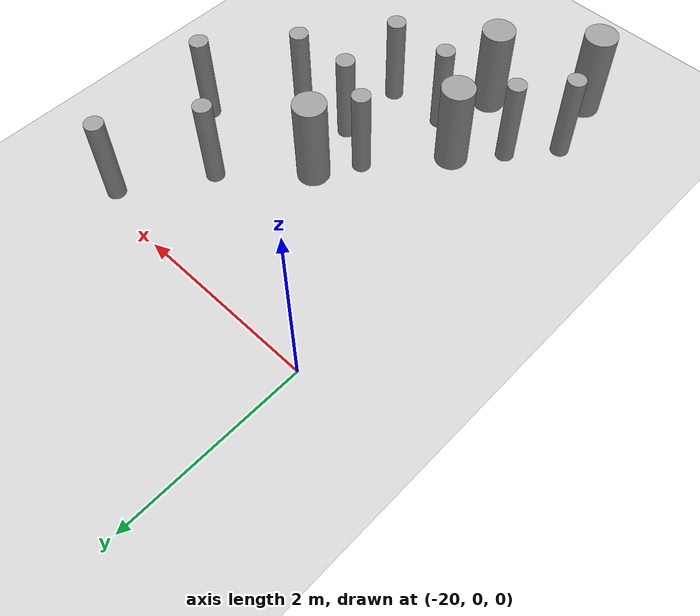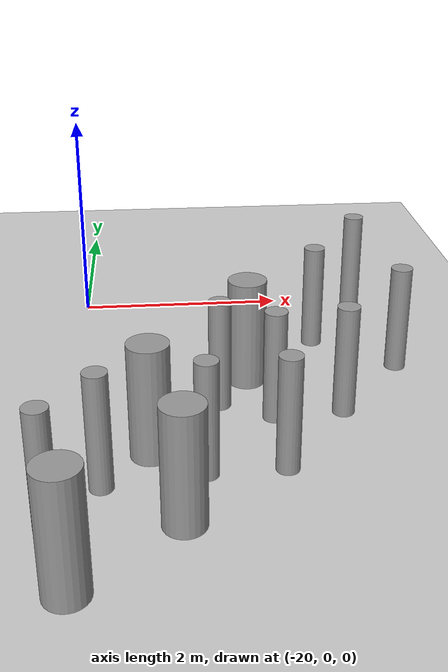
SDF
<sdf version="1.6">
 <world name="default">
  <model name="ground_plane">
   <static>1</static>
   <link name="link">
    <collision name="collision">
     <geometry><plane><normal>0 0 1</normal><size>100 100</size></plane></geometry>
     <surface><friction><ode><mu>100</mu><mu2>50</mu2></ode></friction></surface>
    </collision>
    <visual name="visual">
     <cast_shadows>0</cast_shadows>
     <geometry><plane><normal>0 0 1</normal><size>100 100</size></plane></geometry>
     <material>
      <script><uri>file://media/materials/scripts/gazebo.material</uri><name>Gazebo/Grey</name></script>
     </material>
    </visual>
   </link>
  </model>
  <model name="cyl_wall_clone_clone_1_clone_1_clone_clone_0_clone_1_clone_1">
   <link name="link_0">
    <pose>-2.73893 -0.366465 0 0 -0 0</pose>
    <inertial>
     <mass>0.0374993</mass>
     <inertia>
      <ixx>0.00321281</ixx>
      <ixy>0</ixy>
      <ixz>0</ixz>
      <iyy>0.00321281</iyy>
      <iyz>0</iyz>
      <izz>0.000175774</izz>
     </inertia>
    </inertial>
    <visual name="visual">
     <geometry><cylinder><radius>0.0968661</radius><length>1</length></cylinder></geometry>
     <material>
      <lighting>1</lighting>
      <script><uri>file://media/materials/scripts/gazebo.material</uri><name>Gazebo/Grey</name></script>
      <ambient>0.3 0.3 0.3 1</ambient>
      <diffuse>0.7 0.7 0.7 1</diffuse>
      <specular>0.01 0.01 0.01 1</specular>
      <emissive>0 0 0 1</emissive>
     </material>
    </visual>
    <collision name="collision">
     <geometry><cylinder><radius>0.096866</radius><length>1</length></cylinder></geometry>
     <surface>
      <friction>
       <ode><mu>1</mu><mu2>1</mu2><fdir1>0 0 0</fdir1><slip1>0</slip1><slip2>0</slip2></ode>
       <torsional>
        <coefficient>1</coefficient>
        <patch_radius>0</patch_radius>
        <surface_radius>0</surface_radius>
        <use_patch_radius>1</use_patch_radius>
        <ode><slip>0</slip></ode>
       </torsional>
      </friction>
      <bounce><restitution_coefficient>0</restitution_coefficient><threshold>1e+06</threshold></bounce>
      <contact>
       <collide_without_contact>0</collide_without_contact>
       <collide_without_contact_bitmask>1</collide_without_contact_bitmask>
       <collide_bitmask>1</collide_bitmask>
       <ode>
        <soft_cfm>0</soft_cfm>
        <soft_erp>0.2</soft_erp>
        <kp>1e+13</kp>
        <kd>1</kd>
        <max_vel>0.01</max_vel>
        <min_depth>0</min_depth>
       </ode>
       <bullet>
        <split_impulse>1</split_impulse>
        <split_impulse_penetration_threshold>-0.01</split_impulse_penetration_threshold>
        <soft_cfm>0</soft_cfm>
        <soft_erp>0.2</soft_erp>
        <kp>1e+13</kp>
        <kd>1</kd>
       </bullet>
      </contact>
     </surface>
    </collision>
   </link>
   <link name="link_0_clone">
    <pose>-1.73893 0.61877 0 0 -0 0</pose>
    <inertial>
     <mass>0.0374993</mass>
     <inertia>
      <ixx>0.00321281</ixx>
      <ixy>0</ixy>
      <ixz>0</ixz>
      <iyy>0.00321281</iyy>
      <iyz>0</iyz>
      <izz>0.000175774</izz>
     </inertia>
    </inertial>
    <visual name="visual">
     <geometry><cylinder><radius>0.0968661</radius><length>1</length></cylinder></geometry>
     <material>
      <lighting>1</lighting>
      <script><uri>file://media/materials/scripts/gazebo.material</uri><name>Gazebo/Grey</name></script>
      <ambient>0.3 0.3 0.3 1</ambient>
      <diffuse>0.7 0.7 0.7 1</diffuse>
      <specular>0.01 0.01 0.01 1</specular>
      <emissive>0 0 0 1</emissive>
      <shader type="pixel"/>
     </material>
    </visual>
    <collision name="collision">
     <geometry><cylinder><radius>0.096866</radius><length>1</length></cylinder></geometry>
     <surface>
      <friction>
       <ode><mu>1</mu><mu2>1</mu2><fdir1>0 0 0</fdir1><slip1>0</slip1><slip2>0</slip2></ode>
       <torsional>
        <coefficient>1</coefficient>
        <patch_radius>0</patch_radius>
        <surface_radius>0</surface_radius>
        <use_patch_radius>1</use_patch_radius>
        <ode><slip>0</slip></ode>
       </torsional>
      </friction>
      <bounce><restitution_coefficient>0</restitution_coefficient><threshold>1e+06</threshold></bounce>
      <contact>
       <collide_without_contact>0</collide_without_contact>
       <collide_without_contact_bitmask>1</collide_without_contact_bitmask>
       <collide_bitmask>1</collide_bitmask>
       <ode>
        <soft_cfm>0</soft_cfm>
        <soft_erp>0.2</soft_erp>
        <kp>1e+13</kp>
        <kd>1</kd>
        <max_vel>0.01</max_vel>
        <min_depth>0</min_depth>
       </ode>
       <bullet>
        <split_impulse>1</split_impulse>
        <split_impulse_penetration_threshold>-0.01</split_impulse_penetration_threshold>
        <soft_cfm>0</soft_cfm>
        <soft_erp>0.2</soft_erp>
        <kp>1e+13</kp>
        <kd>1</kd>
       </bullet>
      </contact>
     </surface>
    </collision>
   </link>
   <link name="link_0_clone_clone">
    <pose>-0.327073 0.143919 0 0 -0 0</pose>
    <inertial>
     <mass>0.0374993</mass>
     <inertia>
      <ixx>0.00321281</ixx>
      <ixy>0</ixy>
      <ixz>0</ixz>
      <iyy>0.00321281</iyy>
      <iyz>0</iyz>
      <izz>0.000175774</izz>
     </inertia>
    </inertial>
    <visual name="visual">
     <geometry><cylinder><radius>0.0968661</radius><length>1</length></cylinder></geometry>
     <material>
      <lighting>1</lighting>
      <script><uri>file://media/materials/scripts/gazebo.material</uri><name>Gazebo/Grey</name></script>
      <ambient>0.3 0.3 0.3 1</ambient>
      <diffuse>0.7 0.7 0.7 1</diffuse>
      <specular>0.01 0.01 0.01 1</specular>
      <emissive>0 0 0 1</emissive>
      <shader type="pixel"/>
     </material>
    </visual>
    <collision name="collision">
     <geometry><cylinder><radius>0.096866</radius><length>1</length></cylinder></geometry>
     <surface>
      <friction>
       <ode><mu>1</mu><mu2>1</mu2><fdir1>0 0 0</fdir1><slip1>0</slip1><slip2>0</slip2></ode>
       <torsional>
        <coefficient>1</coefficient>
        <patch_radius>0</patch_radius>
        <surface_radius>0</surface_radius>
        <use_patch_radius>1</use_patch_radius>
        <ode><slip>0</slip></ode>
       </torsional>
      </friction>
      <bounce><restitution_coefficient>0</restitution_coefficient><threshold>1e+06</threshold></bounce>
      <contact>
       <collide_without_contact>0</collide_without_contact>
       <collide_without_contact_bitmask>1</collide_without_contact_bitmask>
       <collide_bitmask>1</collide_bitmask>
       <ode>
        <soft_cfm>0</soft_cfm>
        <soft_erp>0.2</soft_erp>
        <kp>1e+13</kp>
        <kd>1</kd>
        <max_vel>0.01</max_vel>
        <min_depth>0</min_depth>
       </ode>
       <bullet>
        <split_impulse>1</split_impulse>
        <split_impulse_penetration_threshold>-0.01</split_impulse_penetration_threshold>
        <soft_cfm>0</soft_cfm>
        <soft_erp>0.2</soft_erp>
        <kp>1e+13</kp>
        <kd>1</kd>
       </bullet>
      </contact>
     </surface>
    </collision>
   </link>
   <link name="link_0_clone_clone_0">
    <pose>1.26107 -0.419359 0 0 -0 0</pose>
    <inertial>
     <mass>0.0374993</mass>
     <inertia>
      <ixx>0.00321281</ixx>
      <ixy>0</ixy>
      <ixz>0</ixz>
      <iyy>0.00321281</iyy>
      <iyz>0</iyz>
      <izz>0.000175774</izz>
     </inertia>
    </inertial>
    <visual name="visual">
     <geometry><cylinder><radius>0.0968661</radius><length>1</length></cylinder></geometry>
     <material>
      <lighting>1</lighting>
      <script><uri>file://media/materials/scripts/gazebo.material</uri><name>Gazebo/Grey</name></script>
      <ambient>0.3 0.3 0.3 1</ambient>
      <diffuse>0.7 0.7 0.7 1</diffuse>
      <specular>0.01 0.01 0.01 1</specular>
      <emissive>0 0 0 1</emissive>
      <shader type="pixel"/>
     </material>
    </visual>
    <collision name="collision">
     <geometry><cylinder><radius>0.096866</radius><length>1</length></cylinder></geometry>
     <surface>
      <friction>
       <ode><mu>1</mu><mu2>1</mu2><fdir1>0 0 0</fdir1><slip1>0</slip1><slip2>0</slip2></ode>
       <torsional>
        <coefficient>1</coefficient>
        <patch_radius>0</patch_radius>
        <surface_radius>0</surface_radius>
        <use_patch_radius>1</use_patch_radius>
        <ode><slip>0</slip></ode>
       </torsional>
      </friction>
      <bounce><restitution_coefficient>0</restitution_coefficient><threshold>1e+06</threshold></bounce>
      <contact>
       <collide_without_contact>0</collide_without_contact>
       <collide_without_contact_bitmask>1</collide_without_contact_bitmask>
       <collide_bitmask>1</collide_bitmask>
       <ode>
        <soft_cfm>0</soft_cfm>
        <soft_erp>0.2</soft_erp>
        <kp>1e+13</kp>
        <kd>1</kd>
        <max_vel>0.01</max_vel>
        <min_depth>0</min_depth>
       </ode>
       <bullet>
        <split_impulse>1</split_impulse>
        <split_impulse_penetration_threshold>-0.01</split_impulse_penetration_threshold>
        <soft_cfm>0</soft_cfm>
        <soft_erp>0.2</soft_erp>
        <kp>1e+13</kp>
        <kd>1</kd>
       </bullet>
      </contact>
     </surface>
    </collision>
   </link>
   <link name="link_0_clone_clone_1">
    <pose>-1.73893 -0.277168 0 0 -0 0</pose>
    <inertial>
     <mass>0.0374993</mass>
     <inertia>
      <ixx>0.00321281</ixx>
      <ixy>0</ixy>
      <ixz>0</ixz>
      <iyy>0.00321281</iyy>
      <iyz>0</iyz>
      <izz>0.000175774</izz>
     </inertia>
    </inertial>
    <visual name="visual">
     <geometry><cylinder><radius>0.0968661</radius><length>1</length></cylinder></geometry>
     <material>
      <lighting>1</lighting>
      <script><uri>file://media/materials/scripts/gazebo.material</uri><name>Gazebo/Grey</name></script>
      <ambient>0.3 0.3 0.3 1</ambient>
      <diffuse>0.7 0.7 0.7 1</diffuse>
      <specular>0.01 0.01 0.01 1</specular>
      <emissive>0 0 0 1</emissive>
      <shader type="pixel"/>
     </material>
    </visual>
    <collision name="collision">
     <geometry><cylinder><radius>0.096866</radius><length>1</length></cylinder></geometry>
     <surface>
      <friction>
       <ode><mu>1</mu><mu2>1</mu2><fdir1>0 0 0</fdir1><slip1>0</slip1><slip2>0</slip2></ode>
       <torsional>
        <coefficient>1</coefficient>
        <patch_radius>0</patch_radius>
        <surface_radius>0</surface_radius>
        <use_patch_radius>1</use_patch_radius>
        <ode><slip>0</slip></ode>
       </torsional>
      </friction>
      <bounce><restitution_coefficient>0</restitution_coefficient><threshold>1e+06</threshold></bounce>
      <contact>
       <collide_without_contact>0</collide_without_contact>
       <collide_without_contact_bitmask>1</collide_without_contact_bitmask>
       <collide_bitmask>1</collide_bitmask>
       <ode>
        <soft_cfm>0</soft_cfm>
        <soft_erp>0.2</soft_erp>
        <kp>1e+13</kp>
        <kd>1</kd>
        <max_vel>0.01</max_vel>
        <min_depth>0</min_depth>
       </ode>
       <bullet>
        <split_impulse>1</split_impulse>
        <split_impulse_penetration_threshold>-0.01</split_impulse_penetration_threshold>
        <soft_cfm>0</soft_cfm>
        <soft_erp>0.2</soft_erp>
        <kp>1e+13</kp>
        <kd>1</kd>
       </bullet>
      </contact>
     </surface>
    </collision>
   </link>
   <link name="link_0_clone_clone_2">
    <pose>-0.738934 0.593961 0 0 -0 0</pose>
    <inertial>
     <mass>0.0374993</mass>
     <inertia>
      <ixx>0.00321281</ixx>
      <ixy>0</ixy>
      <ixz>0</ixz>
      <iyy>0.00321281</iyy>
      <iyz>0</iyz>
      <izz>0.000175774</izz>
     </inertia>
    </inertial>
    <visual name="visual">
     <geometry><cylinder><radius>0.0968661</radius><length>1</length></cylinder></geometry>
     <material>
      <lighting>1</lighting>
      <script><uri>file://media/materials/scripts/gazebo.material</uri><name>Gazebo/Grey</name></script>
      <ambient>0.3 0.3 0.3 1</ambient>
      <diffuse>0.7 0.7 0.7 1</diffuse>
      <specular>0.01 0.01 0.01 1</specular>
      <emissive>0 0 0 1</emissive>
      <shader type="pixel"/>
     </material>
    </visual>
    <collision name="collision">
     <geometry><cylinder><radius>0.096866</radius><length>1</length></cylinder></geometry>
     <surface>
      <friction>
       <ode><mu>1</mu><mu2>1</mu2><fdir1>0 0 0</fdir1><slip1>0</slip1><slip2>0</slip2></ode>
       <torsional>
        <coefficient>1</coefficient>
        <patch_radius>0</patch_radius>
        <surface_radius>0</surface_radius>
        <use_patch_radius>1</use_patch_radius>
        <ode><slip>0</slip></ode>
       </torsional>
      </friction>
      <bounce><restitution_coefficient>0</restitution_coefficient><threshold>1e+06</threshold></bounce>
      <contact>
       <collide_without_contact>0</collide_without_contact>
       <collide_without_contact_bitmask>1</collide_without_contact_bitmask>
       <collide_bitmask>1</collide_bitmask>
       <ode>
        <soft_cfm>0</soft_cfm>
        <soft_erp>0.2</soft_erp>
        <kp>1e+13</kp>
        <kd>1</kd>
        <max_vel>0.01</max_vel>
        <min_depth>0</min_depth>
       </ode>
       <bullet>
        <split_impulse>1</split_impulse>
        <split_impulse_penetration_threshold>-0.01</split_impulse_penetration_threshold>
        <soft_cfm>0</soft_cfm>
        <soft_erp>0.2</soft_erp>
        <kp>1e+13</kp>
        <kd>1</kd>
       </bullet>
      </contact>
     </surface>
    </collision>
   </link>
   <link name="link_0_clone_clone_3">
    <pose>0.261066 0.624849 0 0 -0 0</pose>
    <inertial>
     <mass>0.0374993</mass>
     <inertia>
      <ixx>0.00321281</ixx>
      <ixy>0</ixy>
      <ixz>0</ixz>
      <iyy>0.00321281</iyy>
      <iyz>0</iyz>
      <izz>0.000175774</izz>
     </inertia>
    </inertial>
    <visual name="visual">
     <geometry><cylinder><radius>0.0968661</radius><length>1</length></cylinder></geometry>
     <material>
      <lighting>1</lighting>
      <script><uri>file://media/materials/scripts/gazebo.material</uri><name>Gazebo/Grey</name></script>
      <ambient>0.3 0.3 0.3 1</ambient>
      <diffuse>0.7 0.7 0.7 1</diffuse>
      <specular>0.01 0.01 0.01 1</specular>
      <emissive>0 0 0 1</emissive>
      <shader type="pixel"/>
     </material>
    </visual>
    <collision name="collision">
     <geometry><cylinder><radius>0.096866</radius><length>1</length></cylinder></geometry>
     <surface>
      <friction>
       <ode><mu>1</mu><mu2>1</mu2><fdir1>0 0 0</fdir1><slip1>0</slip1><slip2>0</slip2></ode>
       <torsional>
        <coefficient>1</coefficient>
        <patch_radius>0</patch_radius>
        <surface_radius>0</surface_radius>
        <use_patch_radius>1</use_patch_radius>
        <ode><slip>0</slip></ode>
       </torsional>
      </friction>
      <bounce><restitution_coefficient>0</restitution_coefficient><threshold>1e+06</threshold></bounce>
      <contact>
       <collide_without_contact>0</collide_without_contact>
       <collide_without_contact_bitmask>1</collide_without_contact_bitmask>
       <collide_bitmask>1</collide_bitmask>
       <ode>
        <soft_cfm>0</soft_cfm>
        <soft_erp>0.2</soft_erp>
        <kp>1e+13</kp>
        <kd>1</kd>
        <max_vel>0.01</max_vel>
        <min_depth>0</min_depth>
       </ode>
       <bullet>
        <split_impulse>1</split_impulse>
        <split_impulse_penetration_threshold>-0.01</split_impulse_penetration_threshold>
        <soft_cfm>0</soft_cfm>
        <soft_erp>0.2</soft_erp>
        <kp>1e+13</kp>
        <kd>1</kd>
       </bullet>
      </contact>
     </surface>
    </collision>
   </link>
   <link name="link_0_clone_clone_4">
    <pose>-0.239049 -0.353105 0 0 -0 0</pose>
    <inertial>
     <mass>0.0374993</mass>
     <inertia>
      <ixx>0.00321281</ixx>
      <ixy>0</ixy>
      <ixz>0</ixz>
      <iyy>0.00321281</iyy>
      <iyz>0</iyz>
      <izz>0.000175774</izz>
     </inertia>
    </inertial>
    <visual name="visual">
     <geometry><cylinder><radius>0.0968661</radius><length>1</length></cylinder></geometry>
     <material>
      <lighting>1</lighting>
      <script><uri>file://media/materials/scripts/gazebo.material</uri><name>Gazebo/Grey</name></script>
      <ambient>0.3 0.3 0.3 1</ambient>
      <diffuse>0.7 0.7 0.7 1</diffuse>
      <specular>0.01 0.01 0.01 1</specular>
      <emissive>0 0 0 1</emissive>
      <shader type="pixel"/>
     </material>
    </visual>
    <collision name="collision">
     <geometry><cylinder><radius>0.096866</radius><length>1</length></cylinder></geometry>
     <surface>
      <friction>
       <ode><mu>1</mu><mu2>1</mu2><fdir1>0 0 0</fdir1><slip1>0</slip1><slip2>0</slip2></ode>
       <torsional>
        <coefficient>1</coefficient>
        <patch_radius>0</patch_radius>
        <surface_radius>0</surface_radius>
        <use_patch_radius>1</use_patch_radius>
        <ode><slip>0</slip></ode>
       </torsional>
      </friction>
      <bounce><restitution_coefficient>0</restitution_coefficient><threshold>1e+06</threshold></bounce>
      <contact>
       <collide_without_contact>0</collide_without_contact>
       <collide_without_contact_bitmask>1</collide_without_contact_bitmask>
       <collide_bitmask>1</collide_bitmask>
       <ode>
        <soft_cfm>0</soft_cfm>
        <soft_erp>0.2</soft_erp>
        <kp>1e+13</kp>
        <kd>1</kd>
        <max_vel>0.01</max_vel>
        <min_depth>0</min_depth>
       </ode>
       <bullet>
        <split_impulse>1</split_impulse>
        <split_impulse_penetration_threshold>-0.01</split_impulse_penetration_threshold>
        <soft_cfm>0</soft_cfm>
        <soft_erp>0.2</soft_erp>
        <kp>1e+13</kp>
        <kd>1</kd>
       </bullet>
      </contact>
     </surface>
    </collision>
   </link>
   <link name="link_0_clone_clone_5">
    <pose>0.672792 0.143919 0 0 -0 0</pose>
    <inertial>
     <mass>0.0374993</mass>
     <inertia>
      <ixx>0.00321281</ixx>
      <ixy>0</ixy>
      <ixz>0</ixz>
      <iyy>0.00321281</iyy>
      <iyz>0</iyz>
      <izz>0.000175774</izz>
     </inertia>
    </inertial>
    <visual name="visual">
     <geometry><cylinder><radius>0.0968661</radius><length>1</length></cylinder></geometry>
     <material>
      <lighting>1</lighting>
      <script><uri>file://media/materials/scripts/gazebo.material</uri><name>Gazebo/Grey</name></script>
      <ambient>0.3 0.3 0.3 1</ambient>
      <diffuse>0.7 0.7 0.7 1</diffuse>
      <specular>0.01 0.01 0.01 1</specular>
      <emissive>0 0 0 1</emissive>
      <shader type="pixel"/>
     </material>
    </visual>
    <collision name="collision">
     <geometry><cylinder><radius>0.096866</radius><length>1</length></cylinder></geometry>
     <surface>
      <friction>
       <ode><mu>1</mu><mu2>1</mu2><fdir1>0 0 0</fdir1><slip1>0</slip1><slip2>0</slip2></ode>
       <torsional>
        <coefficient>1</coefficient>
        <patch_radius>0</patch_radius>
        <surface_radius>0</surface_radius>
        <use_patch_radius>1</use_patch_radius>
        <ode><slip>0</slip></ode>
       </torsional>
      </friction>
      <bounce><restitution_coefficient>0</restitution_coefficient><threshold>1e+06</threshold></bounce>
      <contact>
       <collide_without_contact>0</collide_without_contact>
       <collide_without_contact_bitmask>1</collide_without_contact_bitmask>
       <collide_bitmask>1</collide_bitmask>
       <ode>
        <soft_cfm>0</soft_cfm>
        <soft_erp>0.2</soft_erp>
        <kp>1e+13</kp>
        <kd>1</kd>
        <max_vel>0.01</max_vel>
        <min_depth>0</min_depth>
       </ode>
       <bullet>
        <split_impulse>1</split_impulse>
        <split_impulse_penetration_threshold>-0.01</split_impulse_penetration_threshold>
        <soft_cfm>0</soft_cfm>
        <soft_erp>0.2</soft_erp>
        <kp>1e+13</kp>
        <kd>1</kd>
       </bullet>
      </contact>
     </surface>
    </collision>
   </link>
   <link name="link_0_clone_clone_6">
    <pose>1.84596 -0.433423 0 0 -0 0</pose>
    <inertial>
     <mass>0.0374993</mass>
     <inertia>
      <ixx>0.00321281</ixx>
      <ixy>0</ixy>
      <ixz>0</ixz>
      <iyy>0.00321281</iyy>
      <iyz>0</iyz>
      <izz>0.000175774</izz>
     </inertia>
    </inertial>
    <visual name="visual">
     <geometry><cylinder><radius>0.0968661</radius><length>1</length></cylinder></geometry>
     <material>
      <lighting>1</lighting>
      <script><uri>file://media/materials/scripts/gazebo.material</uri><name>Gazebo/Grey</name></script>
      <ambient>0.3 0.3 0.3 1</ambient>
      <diffuse>0.7 0.7 0.7 1</diffuse>
      <specular>0.01 0.01 0.01 1</specular>
      <emissive>0 0 0 1</emissive>
      <shader type="pixel"/>
     </material>
    </visual>
    <collision name="collision">
     <geometry><cylinder><radius>0.096866</radius><length>1</length></cylinder></geometry>
     <surface>
      <friction>
       <ode><mu>1</mu><mu2>1</mu2><fdir1>0 0 0</fdir1><slip1>0</slip1><slip2>0</slip2></ode>
       <torsional>
        <coefficient>1</coefficient>
        <patch_radius>0</patch_radius>
        <surface_radius>0</surface_radius>
        <use_patch_radius>1</use_patch_radius>
        <ode><slip>0</slip></ode>
       </torsional>
      </friction>
      <bounce><restitution_coefficient>0</restitution_coefficient><threshold>1e+06</threshold></bounce>
      <contact>
       <collide_without_contact>0</collide_without_contact>
       <collide_without_contact_bitmask>1</collide_without_contact_bitmask>
       <collide_bitmask>1</collide_bitmask>
       <ode>
        <soft_cfm>0</soft_cfm>
        <soft_erp>0.2</soft_erp>
        <kp>1e+13</kp>
        <kd>1</kd>
        <max_vel>0.01</max_vel>
        <min_depth>0</min_depth>
       </ode>
       <bullet>
        <split_impulse>1</split_impulse>
        <split_impulse_penetration_threshold>-0.01</split_impulse_penetration_threshold>
        <soft_cfm>0</soft_cfm>
        <soft_erp>0.2</soft_erp>
        <kp>1e+13</kp>
        <kd>1</kd>
       </bullet>
      </contact>
     </surface>
    </collision>
   </link>
   <link name="link_1">
    <pose>-0.738934 -0.397931 0 0 -0 0</pose>
    <inertial>
     <mass>0.117398</mass>
     <inertia>
      <ixx>0.0106445</ixx>
      <ixy>0</ixy>
      <ixz>0</ixz>
      <iyy>0.0106445</iyy>
      <iyz>0</iyz>
      <izz>0.00172278</izz>
     </inertia>
    </inertial>
    <visual name="visual">
     <geometry><cylinder><radius>0.171317</radius><length>1</length></cylinder></geometry>
     <material>
      <lighting>1</lighting>
      <script><uri>file://media/materials/scripts/gazebo.material</uri><name>Gazebo/Grey</name></script>
      <ambient>0.3 0.3 0.3 1</ambient>
      <diffuse>0.7 0.7 0.7 1</diffuse>
      <specular>0.01 0.01 0.01 1</specular>
      <emissive>0 0 0 1</emissive>
     </material>
    </visual>
    <collision name="collision">
     <geometry><cylinder><radius>0.171317</radius><length>1</length></cylinder></geometry>
     <surface>
      <friction>
       <ode><mu>1</mu><mu2>1</mu2><fdir1>0 0 0</fdir1><slip1>0</slip1><slip2>0</slip2></ode>
       <torsional>
        <coefficient>1</coefficient>
        <patch_radius>0</patch_radius>
        <surface_radius>0</surface_radius>
        <use_patch_radius>1</use_patch_radius>
        <ode><slip>0</slip></ode>
       </torsional>
      </friction>
      <bounce><restitution_coefficient>0</restitution_coefficient><threshold>1e+06</threshold></bounce>
      <contact>
       <collide_without_contact>0</collide_without_contact>
       <collide_without_contact_bitmask>1</collide_without_contact_bitmask>
       <collide_bitmask>1</collide_bitmask>
       <ode>
        <soft_cfm>0</soft_cfm>
        <soft_erp>0.2</soft_erp>
        <kp>1e+13</kp>
        <kd>1</kd>
        <max_vel>0.01</max_vel>
        <min_depth>0</min_depth>
       </ode>
       <bullet>
        <split_impulse>1</split_impulse>
        <split_impulse_penetration_threshold>-0.01</split_impulse_penetration_threshold>
        <soft_cfm>0</soft_cfm>
        <soft_erp>0.2</soft_erp>
        <kp>1e+13</kp>
        <kd>1</kd>
       </bullet>
      </contact>
     </surface>
    </collision>
   </link>
   <link name="link_1_clone">
    <pose>0.697784 -0.380861 0 0 -0 0</pose>
    <inertial>
     <mass>0.117398</mass>
     <inertia>
      <ixx>0.0106445</ixx>
      <ixy>0</ixy>
      <ixz>0</ixz>
      <iyy>0.0106445</iyy>
      <iyz>0</iyz>
      <izz>0.00172278</izz>
     </inertia>
    </inertial>
    <visual name="visual">
     <geometry><cylinder><radius>0.171317</radius><length>1</length></cylinder></geometry>
     <material>
      <lighting>1</lighting>
      <script><uri>file://media/materials/scripts/gazebo.material</uri><name>Gazebo/Grey</name></script>
      <ambient>0.3 0.3 0.3 1</ambient>
      <diffuse>0.7 0.7 0.7 1</diffuse>
      <specular>0.01 0.01 0.01 1</specular>
      <emissive>0 0 0 1</emissive>
      <shader type="pixel"/>
     </material>
    </visual>
    <collision name="collision">
     <geometry><cylinder><radius>0.171317</radius><length>1</length></cylinder></geometry>
     <surface>
      <friction>
       <ode><mu>1</mu><mu2>1</mu2><fdir1>0 0 0</fdir1><slip1>0</slip1><slip2>0</slip2></ode>
       <torsional>
        <coefficient>1</coefficient>
        <patch_radius>0</patch_radius>
        <surface_radius>0</surface_radius>
        <use_patch_radius>1</use_patch_radius>
        <ode><slip>0</slip></ode>
       </torsional>
      </friction>
      <bounce><restitution_coefficient>0</restitution_coefficient><threshold>1e+06</threshold></bounce>
      <contact>
       <collide_without_contact>0</collide_without_contact>
       <collide_without_contact_bitmask>1</collide_without_contact_bitmask>
       <collide_bitmask>1</collide_bitmask>
       <ode>
        <soft_cfm>0</soft_cfm>
        <soft_erp>0.2</soft_erp>
        <kp>1e+13</kp>
        <kd>1</kd>
        <max_vel>0.01</max_vel>
        <min_depth>0</min_depth>
       </ode>
       <bullet>
        <split_impulse>1</split_impulse>
        <split_impulse_penetration_threshold>-0.01</split_impulse_penetration_threshold>
        <soft_cfm>0</soft_cfm>
        <soft_erp>0.2</soft_erp>
        <kp>1e+13</kp>
        <kd>1</kd>
       </bullet>
      </contact>
     </surface>
    </collision>
   </link>
   <link name="link_1_clone_0">
    <pose>1.26107 0.358974 0 0 -0 0</pose>
    <inertial>
     <mass>0.117398</mass>
     <inertia>
      <ixx>0.0106445</ixx>
      <ixy>0</ixy>
      <ixz>0</ixz>
      <iyy>0.0106445</iyy>
      <iyz>0</iyz>
      <izz>0.00172278</izz>
     </inertia>
    </inertial>
    <visual name="visual">
     <geometry><cylinder><radius>0.171317</radius><length>1</length></cylinder></geometry>
     <material>
      <lighting>1</lighting>
      <script><uri>file://media/materials/scripts/gazebo.material</uri><name>Gazebo/Grey</name></script>
      <ambient>0.3 0.3 0.3 1</ambient>
      <diffuse>0.7 0.7 0.7 1</diffuse>
      <specular>0.01 0.01 0.01 1</specular>
      <emissive>0 0 0 1</emissive>
      <shader type="pixel"/>
     </material>
    </visual>
    <collision name="collision">
     <geometry><cylinder><radius>0.171317</radius><length>1</length></cylinder></geometry>
     <surface>
      <friction>
       <ode><mu>1</mu><mu2>1</mu2><fdir1>0 0 0</fdir1><slip1>0</slip1><slip2>0</slip2></ode>
       <torsional>
        <coefficient>1</coefficient>
        <patch_radius>0</patch_radius>
        <surface_radius>0</surface_radius>
        <use_patch_radius>1</use_patch_radius>
        <ode><slip>0</slip></ode>
       </torsional>
      </friction>
      <bounce><restitution_coefficient>0</restitution_coefficient><threshold>1e+06</threshold></bounce>
      <contact>
       <collide_without_contact>0</collide_without_contact>
       <collide_without_contact_bitmask>1</collide_without_contact_bitmask>
       <collide_bitmask>1</collide_bitmask>
       <ode>
        <soft_cfm>0</soft_cfm>
        <soft_erp>0.2</soft_erp>
        <kp>1e+13</kp>
        <kd>1</kd>
        <max_vel>0.01</max_vel>
        <min_depth>0</min_depth>
       </ode>
       <bullet>
        <split_impulse>1</split_impulse>
        <split_impulse_penetration_threshold>-0.01</split_impulse_penetration_threshold>
        <soft_cfm>0</soft_cfm>
        <soft_erp>0.2</soft_erp>
        <kp>1e+13</kp>
        <kd>1</kd>
       </bullet>
      </contact>
     </surface>
    </collision>
   </link>
   <link name="link_1_clone_1">
    <pose>2.26107 0.143919 0 0 -0 0</pose>
    <inertial>
     <mass>0.117398</mass>
     <inertia>
      <ixx>0.0106445</ixx>
      <ixy>0</ixy>
      <ixz>0</ixz>
      <iyy>0.0106445</iyy>
      <iyz>0</iyz>
      <izz>0.00172278</izz>
     </inertia>
    </inertial>
    <visual name="visual">
     <geometry><cylinder><radius>0.171317</radius><length>1</length></cylinder></geometry>
     <material>
      <lighting>1</lighting>
      <script><uri>file://media/materials/scripts/gazebo.material</uri><name>Gazebo/Grey</name></script>
      <ambient>0.3 0.3 0.3 1</ambient>
      <diffuse>0.7 0.7 0.7 1</diffuse>
      <specular>0.01 0.01 0.01 1</specular>
      <emissive>0 0 0 1</emissive>
      <shader type="pixel"/>
     </material>
    </visual>
    <collision name="collision">
     <geometry><cylinder><radius>0.171317</radius><length>1</length></cylinder></geometry>
     <surface>
      <friction>
       <ode><mu>1</mu><mu2>1</mu2><fdir1>0 0 0</fdir1><slip1>0</slip1><slip2>0</slip2></ode>
       <torsional>
        <coefficient>1</coefficient>
        <patch_radius>0</patch_radius>
        <surface_radius>0</surface_radius>
        <use_patch_radius>1</use_patch_radius>
        <ode><slip>0</slip></ode>
       </torsional>
      </friction>
      <bounce><restitution_coefficient>0</restitution_coefficient><threshold>1e+06</threshold></bounce>
      <contact>
       <collide_without_contact>0</collide_without_contact>
       <collide_without_contact_bitmask>1</collide_without_contact_bitmask>
       <collide_bitmask>1</collide_bitmask>
       <ode>
        <soft_cfm>0</soft_cfm>
        <soft_erp>0.2</soft_erp>
        <kp>1e+13</kp>
        <kd>1</kd>
        <max_vel>0.01</max_vel>
        <min_depth>0</min_depth>
       </ode>
       <bullet>
        <split_impulse>1</split_impulse>
        <split_impulse_penetration_threshold>-0.01</split_impulse_penetration_threshold>
        <soft_cfm>0</soft_cfm>
        <soft_erp>0.2</soft_erp>
        <kp>1e+13</kp>
        <kd>1</kd>
       </bullet>
      </contact>
     </surface>
    </collision>
   </link>
   <static>1</static>
   <pose>-18.6192 -2.52743 0.5 0 0 -2.24061</pose>
  </model>
 </world>
</sdf>
